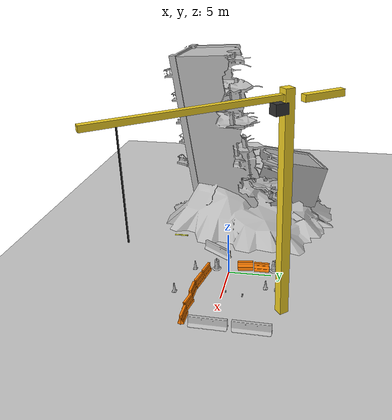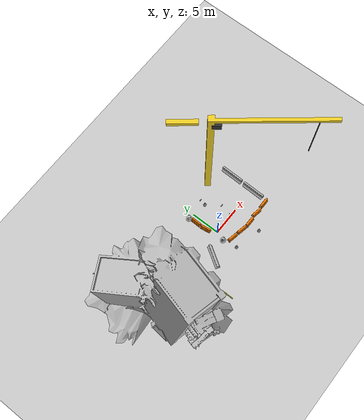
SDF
<sdf version="1.6">
 <world name="default">
  <light name="sun" type="directional">
   <pose>0 0 10 0 -0 0</pose>
   <diffuse>0.8 0.8 0.8 1</diffuse>
   <specular>0.1 0.1 0.1 1</specular>
   <attenuation>
    <range>1000</range>
    <constant>0.9</constant>
    <linear>0.01</linear>
    <quadratic>0.001</quadratic>
   </attenuation>
   <direction>-0.5 0.5 -1</direction>
  </light>
  <model name="ground_plane">
   <static>1</static>
   <link name="link">
    <collision name="collision">
     <geometry><plane><normal>0 0 1</normal><size>100 100</size></plane></geometry>
     <surface><friction><ode><mu>100</mu><mu2>50</mu2></ode></friction></surface>
    </collision>
    <visual name="visual">
     <cast_shadows>0</cast_shadows>
     <geometry><plane><normal>0 0 1</normal><size>100 100</size></plane></geometry>
     <material>
      <script><uri>file://media/materials/scripts/gazebo.material</uri><name>Gazebo/Grey</name></script>
     </material>
    </visual>
   </link>
  </model>
  <gravity>0 0 -9.8</gravity>
  <magnetic_field>6e-06 2.3e-05 -4.2e-05</magnetic_field>
  <atmosphere type="adiabatic"/>
  <physics name="default_physics" default="0" type="ode">
   <max_step_size>0.001</max_step_size>
   <real_time_factor>1</real_time_factor>
   <real_time_update_rate>1000</real_time_update_rate>
  </physics>
  <scene><ambient>0.4 0.4 0.4 1</ambient><background>0.7 0.7 0.7 1</background><shadows>1</shadows></scene>
  <spherical_coordinates>
   <surface_model>EARTH_WGS84</surface_model>
   <latitude_deg>0</latitude_deg>
   <longitude_deg>0</longitude_deg>
   <elevation>0</elevation>
   <heading_deg>0</heading_deg>
  </spherical_coordinates>
  <model name="collapsed_industrial">
   <static>1</static>
   <link name="link">
    <collision name="collision">
     <geometry><mesh><uri>model://collapsed_industrial/meshes/collapsed_industrial.dae</uri></mesh></geometry>
    </collision>
    <visual name="visual">
     <geometry><mesh><uri>model://collapsed_industrial/meshes/collapsed_industrial.dae</uri></mesh></geometry>
    </visual>
   </link>
   <pose>-14.0067 -0.103419 0 0 -0 1.33365</pose>
  </model>
  <model name="tower_crane">
   <static>1</static>
   <link name="link">
    <collision name="collision">
     <geometry><mesh><uri>model://tower_crane/meshes/tower_crane.dae</uri></mesh></geometry>
    </collision>
    <visual name="visual">
     <geometry><mesh><uri>model://tower_crane/meshes/tower_crane.dae</uri></mesh></geometry>
    </visual>
   </link>
   <pose>6.03726 6.79238 0 0 0 -0.898155</pose>
  </model>
  <model name="Construction Barrel">
   <link name="link">
    <inertial>
     <pose>0 0 0.4 0 -0 0</pose>
     <mass>500</mass>
     <inertia><ixx>51.2096</ixx><iyy>51.2096</iyy><izz>25</izz><ixy>0</ixy><ixz>0</ixz><iyz>0</iyz></inertia>
    </inertial>
    <collision name="collision">
     <geometry><mesh><uri>model://construction_barrel/meshes/construction_barrel.dae</uri></mesh></geometry>
    </collision>
    <visual name="visual">
     <geometry><mesh><uri>model://construction_barrel/meshes/construction_barrel.dae</uri></mesh></geometry>
    </visual>
   </link>
   <pose>-1.05597 5.25063 -2e-06 -8e-06 -0 0.858265</pose>
  </model>
  <model name="drc_practice_yellow_parking_block">
   <static>1</static>
   <link name="link">
    <visual name="visual">
     <geometry><mesh><uri>model://drc_practice_yellow_parking_block/meshes/block.dae</uri></mesh></geometry>
    </visual>
    <collision name="collision">
     <geometry><mesh><uri>model://drc_practice_yellow_parking_block/meshes/block.dae</uri></mesh></geometry>
    </collision>
   </link>
   <pose>-7.46948 -7.91567 0 0 -0 0</pose>
  </model>
  <model name="drc_practice_organge_jersey_barrier">
   <static>1</static>
   <link name="link">
    <visual name="visual">
     <geometry>
      <mesh><uri>model://drc_practice_orange_jersey_barrier/meshes/jersey_barrier.dae</uri></mesh>
     </geometry>
    </visual>
    <collision name="collision">
     <geometry>
      <mesh><uri>model://drc_practice_orange_jersey_barrier/meshes/jersey_barrier.dae</uri></mesh>
     </geometry>
    </collision>
   </link>
   <pose>-0.887228 3.80913 0 0 -0 0</pose>
  </model>
  <model name="drc_practice_organge_jersey_barrier_clone">
   <static>1</static>
   <link name="link">
    <visual name="visual">
     <geometry>
      <mesh><uri>model://drc_practice_orange_jersey_barrier/meshes/jersey_barrier.dae</uri></mesh>
     </geometry>
    </visual>
    <collision name="collision">
     <geometry>
      <mesh><uri>model://drc_practice_orange_jersey_barrier/meshes/jersey_barrier.dae</uri></mesh>
     </geometry>
    </collision>
   </link>
   <pose>-0.831854 1.85615 0.074298 0 -0 0.148039</pose>
  </model>
  <model name="Construction Barrel_0">
   <link name="link">
    <inertial>
     <pose>0 0 0.4 0 -0 0</pose>
     <mass>500</mass>
     <inertia><ixx>51.2096</ixx><iyy>51.2096</iyy><izz>25</izz><ixy>0</ixy><ixz>0</ixz><iyz>0</iyz></inertia>
    </inertial>
    <collision name="collision">
     <geometry><mesh><uri>model://construction_barrel/meshes/construction_barrel.dae</uri></mesh></geometry>
    </collision>
    <visual name="visual">
     <geometry><mesh><uri>model://construction_barrel/meshes/construction_barrel.dae</uri></mesh></geometry>
    </visual>
   </link>
   <pose>-0.544661 -1.56643 -2e-06 0 7e-06 0.000359</pose>
  </model>
  <model name="drc_practice_organge_jersey_barrier_clone_clone_clone">
   <static>1</static>
   <link name="link">
    <visual name="visual">
     <geometry>
      <mesh><uri>model://drc_practice_orange_jersey_barrier/meshes/jersey_barrier.dae</uri></mesh>
     </geometry>
    </visual>
    <collision name="collision">
     <geometry>
      <mesh><uri>model://drc_practice_orange_jersey_barrier/meshes/jersey_barrier.dae</uri></mesh>
     </geometry>
    </collision>
   </link>
   <pose>0.730668 -2.58497 0 0 -0 1.36537</pose>
  </model>
  <model name="drc_practice_organge_jersey_barrier_clone_clone_clone_clone">
   <static>1</static>
   <link name="link">
    <visual name="visual">
     <geometry>
      <mesh><uri>model://drc_practice_orange_jersey_barrier/meshes/jersey_barrier.dae</uri></mesh>
     </geometry>
    </visual>
    <collision name="collision">
     <geometry>
      <mesh><uri>model://drc_practice_orange_jersey_barrier/meshes/jersey_barrier.dae</uri></mesh>
     </geometry>
    </collision>
   </link>
   <pose>2.74419 -2.98704 0 0 -0 1.36537</pose>
  </model>
  <model name="drc_practice_organge_jersey_barrier_clone_clone_clone_clone_0">
   <static>1</static>
   <link name="link">
    <visual name="visual">
     <geometry>
      <mesh><uri>model://drc_practice_orange_jersey_barrier/meshes/jersey_barrier.dae</uri></mesh>
     </geometry>
    </visual>
    <collision name="collision">
     <geometry>
      <mesh><uri>model://drc_practice_orange_jersey_barrier/meshes/jersey_barrier.dae</uri></mesh>
     </geometry>
    </collision>
   </link>
   <pose>4.65125 -3.23691 0 0 -0 1.56758</pose>
  </model>
  <model name="drc_practice_organge_jersey_barrier_clone_clone_clone_clone_0_clone">
   <static>1</static>
   <link name="link">
    <visual name="visual">
     <geometry>
      <mesh><uri>model://drc_practice_orange_jersey_barrier/meshes/jersey_barrier.dae</uri></mesh>
     </geometry>
    </visual>
    <collision name="collision">
     <geometry>
      <mesh><uri>model://drc_practice_orange_jersey_barrier/meshes/jersey_barrier.dae</uri></mesh>
     </geometry>
    </collision>
   </link>
   <pose>6.73423 -3.15665 0 0 -0 1.3882</pose>
  </model>
  <model name="drc_practice_organge_jersey_barrier_clone_clone_clone_clone_0_clone_0">
   <static>1</static>
   <link name="link">
    <visual name="visual">
     <geometry>
      <mesh><uri>model://drc_practice_orange_jersey_barrier/meshes/jersey_barrier.dae</uri></mesh>
     </geometry>
    </visual>
    <collision name="collision">
     <geometry>
      <mesh><uri>model://drc_practice_orange_jersey_barrier/meshes/jersey_barrier.dae</uri></mesh>
     </geometry>
    </collision>
   </link>
   <pose>8.77452 -3.12573 0 0 -0 1.56758</pose>
  </model>
  <model name="jersey_barrier">
   <static>1</static>
   <link name="link">
    <visual name="visual">
     <geometry><mesh><uri>model://jersey_barrier/meshes/jersey_barrier.dae</uri></mesh></geometry>
    </visual>
    <collision name="upright">
     <pose>0 0 0.5715 0 -0 0</pose>
     <geometry><box><size>4.06542 0.3063 1.143</size></box></geometry>
    </collision>
    <collision name="base">
     <pose>0 0 0.032258 0 -0 0</pose>
     <geometry><box><size>4.06542 0.8107 0.064516</size></box></geometry>
    </collision>
    <collision name="base2">
     <pose>0 0 0.1 0 -0 0</pose>
     <geometry><box><size>4.06542 0.65 0.1</size></box></geometry>
    </collision>
    <collision name="base3">
     <pose>0 0 0.2 0 -0 0</pose>
     <geometry><box><size>4.06542 0.5 0.1</size></box></geometry>
    </collision>
    <collision name="left-angle">
     <pose>0 -0.224 0.2401 0.9 -0 0</pose>
     <geometry><box><size>4.06542 0.5 0.064516</size></box></geometry>
    </collision>
    <collision name="right-angle">
     <pose>0 0.224 0.2401 -0.9 0 0</pose>
     <geometry><box><size>4.06542 0.5 0.064516</size></box></geometry>
    </collision>
   </link>
   <pose>9.63167 -0.326579 0 0 -0 1.55298</pose>
  </model>
  <model name="jersey_barrier_clone">
   <static>1</static>
   <link name="link">
    <visual name="visual">
     <geometry><mesh><uri>model://jersey_barrier/meshes/jersey_barrier.dae</uri></mesh></geometry>
    </visual>
    <collision name="upright">
     <pose>0 0 0.5715 0 -0 0</pose>
     <geometry><box><size>4.06542 0.3063 1.143</size></box></geometry>
    </collision>
    <collision name="base">
     <pose>0 0 0.032258 0 -0 0</pose>
     <geometry><box><size>4.06542 0.8107 0.064516</size></box></geometry>
    </collision>
    <collision name="base2">
     <pose>0 0 0.1 0 -0 0</pose>
     <geometry><box><size>4.06542 0.65 0.1</size></box></geometry>
    </collision>
    <collision name="base3">
     <pose>0 0 0.2 0 -0 0</pose>
     <geometry><box><size>4.06542 0.5 0.1</size></box></geometry>
    </collision>
    <collision name="left-angle">
     <pose>0 -0.224 0.2401 0.9 -0 0</pose>
     <geometry><box><size>4.06542 0.5 0.064516</size></box></geometry>
    </collision>
    <collision name="right-angle">
     <pose>0 0.224 0.2401 -0.9 0 0</pose>
     <geometry><box><size>4.06542 0.5 0.064516</size></box></geometry>
    </collision>
   </link>
   <pose>9.70602 4.18121 0 0 -0 1.55298</pose>
  </model>
  <model name="beer">
   <link name="link">
    <pose>0 0 0.115 0 -0 0</pose>
    <inertial>
     <mass>0.39</mass>
     <inertia><ixx>0.00058</ixx><ixy>0</ixy><ixz>0</ixz><iyy>0.00058</iyy><iyz>0</iyz><izz>0.00019</izz></inertia>
    </inertial>
    <collision name="collision">
     <geometry><cylinder><radius>0.055</radius><length>0.23</length></cylinder></geometry>
    </collision>
    <visual name="visual">
     <geometry><cylinder><radius>0.055</radius><length>0.23</length></cylinder></geometry>
     <material>
      <script>
       <uri>model://beer/materials/scripts</uri>
       <uri>model://beer/materials/textures</uri>
       <name>Beer/Diffuse</name>
      </script>
     </material>
    </visual>
   </link>
   <pose>3.85469 0.373431 -8e-06 0 -0 0.000334</pose>
  </model>
  <model name="standpipe">
   <static>1</static>
   <link name="standpipe">
    <pose>0 0 0.1 0 1.57078 0</pose>
    <collision name="collision_stopper">
     <pose>0 0 0.22 0 -0 0</pose>
     <geometry><cylinder><radius>0.069</radius><length>0.1</length></cylinder></geometry>
     <surface><friction><ode><mu>0.5</mu><mu2>0.5</mu2></ode></friction></surface>
    </collision>
    <collision name="collision">
     <pose>0 0 0.15 0 -0 0</pose>
     <geometry><mesh><uri>model://standpipe/meshes/standpipe.dae</uri></mesh></geometry>
     <surface><friction><ode><mu>0.5</mu><mu2>0.5</mu2></ode></friction></surface>
    </collision>
    <visual name="visual">
     <pose>0 0 0.15 0 -0 0</pose>
     <geometry><mesh><uri>model://standpipe/meshes/standpipe.dae</uri></mesh></geometry>
    </visual>
   </link>
   <pose>3.91415 2.30422 0 0 -0 0</pose>
  </model>
  <model name="standpipe_clone">
   <static>1</static>
   <link name="standpipe">
    <pose>0 0 0.1 0 1.57078 0</pose>
    <collision name="collision_stopper">
     <pose>0 0 0.22 0 -0 0</pose>
     <geometry><cylinder><radius>0.069</radius><length>0.1</length></cylinder></geometry>
     <surface><friction><ode><mu>0.5</mu><mu2>0.5</mu2></ode></friction></surface>
    </collision>
    <collision name="collision">
     <pose>0 0 0.15 0 -0 0</pose>
     <geometry><mesh><uri>model://standpipe/meshes/standpipe.dae</uri></mesh></geometry>
     <surface><friction><ode><mu>0.5</mu><mu2>0.5</mu2></ode></friction></surface>
    </collision>
    <visual name="visual">
     <pose>0 0 0.15 0 -0 0</pose>
     <geometry><mesh><uri>model://standpipe/meshes/standpipe.dae</uri></mesh></geometry>
    </visual>
   </link>
   <pose>2.44659 5.74462 0 0 -0 0</pose>
  </model>
  <model name="jersey_barrier_0">
   <static>1</static>
   <link name="link">
    <visual name="visual">
     <geometry><mesh><uri>model://jersey_barrier/meshes/jersey_barrier.dae</uri></mesh></geometry>
    </visual>
    <collision name="upright">
     <pose>0 0 0.5715 0 -0 0</pose>
     <geometry><box><size>4.06542 0.3063 1.143</size></box></geometry>
    </collision>
    <collision name="base">
     <pose>0 0 0.032258 0 -0 0</pose>
     <geometry><box><size>4.06542 0.8107 0.064516</size></box></geometry>
    </collision>
    <collision name="base2">
     <pose>0 0 0.1 0 -0 0</pose>
     <geometry><box><size>4.06542 0.65 0.1</size></box></geometry>
    </collision>
    <collision name="base3">
     <pose>0 0 0.2 0 -0 0</pose>
     <geometry><box><size>4.06542 0.5 0.1</size></box></geometry>
    </collision>
    <collision name="left-angle">
     <pose>0 -0.224 0.2401 0.9 -0 0</pose>
     <geometry><box><size>4.06542 0.5 0.064516</size></box></geometry>
    </collision>
    <collision name="right-angle">
     <pose>0 0.224 0.2401 -0.9 0 0</pose>
     <geometry><box><size>4.06542 0.5 0.064516</size></box></geometry>
    </collision>
   </link>
   <pose>-3.83767 -2.1374 0 0 -0 1.00568</pose>
  </model>
  <model name="Construction Cone_clone_clone_clone">
   <link name="link">
    <collision name="collision">
     <geometry>
      <mesh><scale>10 10 10</scale><uri>model://construction_cone/meshes/construction_cone.dae</uri></mesh>
     </geometry>
    </collision>
    <visual name="visual">
     <geometry>
      <mesh><scale>10 10 10</scale><uri>model://construction_cone/meshes/construction_cone.dae</uri></mesh>
     </geometry>
    </visual>
    <inertial>
     <inertia><ixx>1</ixx><ixy>0</ixy><ixz>0</ixz><iyy>1</iyy><iyz>0</iyz><izz>1</izz></inertia>
     <mass>1</mass>
    </inertial>
   </link>
   <pose>-0.135956 -4.11164 -0 0 -0 0</pose>
  </model>
  <model name="standpipe_clone_0">
   <static>1</static>
   <link name="standpipe">
    <pose>0 0 0.1 0 1.57078 0</pose>
    <collision name="collision_stopper">
     <pose>0 0 0.22 0 -0 0</pose>
     <geometry><cylinder><radius>0.069</radius><length>0.1</length></cylinder></geometry>
     <surface><friction><ode><mu>0.5</mu><mu2>0.5</mu2></ode></friction></surface>
    </collision>
    <collision name="collision">
     <pose>0 0 0.15 0 -0 0</pose>
     <geometry><mesh><uri>model://standpipe/meshes/standpipe.dae</uri></mesh></geometry>
     <surface><friction><ode><mu>0.5</mu><mu2>0.5</mu2></ode></friction></surface>
    </collision>
    <visual name="visual">
     <pose>0 0 0.15 0 -0 0</pose>
     <geometry><mesh><uri>model://standpipe/meshes/standpipe.dae</uri></mesh></geometry>
    </visual>
   </link>
   <pose>3.87778 2.30096 0 0 -0 0</pose>
  </model>
  <model name="Construction Cone_clone_clone_clone_clone">
   <link name="link">
    <collision name="collision">
     <geometry>
      <mesh><scale>10 10 10</scale><uri>model://construction_cone/meshes/construction_cone.dae</uri></mesh>
     </geometry>
    </collision>
    <visual name="visual">
     <geometry>
      <mesh><scale>10 10 10</scale><uri>model://construction_cone/meshes/construction_cone.dae</uri></mesh>
     </geometry>
    </visual>
    <inertial>
     <inertia><ixx>1</ixx><ixy>0</ixy><ixz>0</ixz><iyy>1</iyy><iyz>0</iyz><izz>1</izz></inertia>
     <mass>1</mass>
    </inertial>
   </link>
   <pose>4.49108 -5.34208 -0 0 -0 0</pose>
  </model>
  <model name="Construction Cone">
   <link name="link">
    <collision name="collision">
     <geometry>
      <mesh><scale>10 10 10</scale><uri>model://construction_cone/meshes/construction_cone.dae</uri></mesh>
     </geometry>
    </collision>
    <visual name="visual">
     <geometry>
      <mesh><scale>10 10 10</scale><uri>model://construction_cone/meshes/construction_cone.dae</uri></mesh>
     </geometry>
    </visual>
    <inertial>
     <inertia><ixx>1</ixx><ixy>0</ixy><ixz>0</ixz><iyy>1</iyy><iyz>0</iyz><izz>1</izz></inertia>
     <mass>1</mass>
    </inertial>
   </link>
   <pose>2.54262 4.66686 -0 0 -0 0</pose>
  </model>
 </world>
</sdf>
